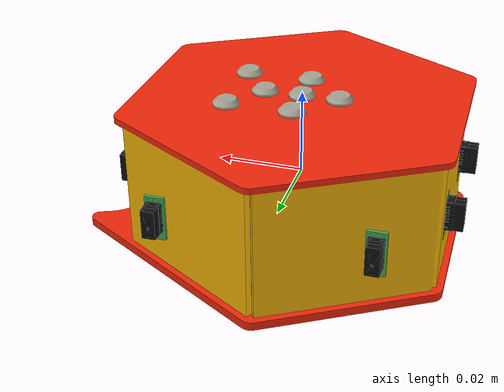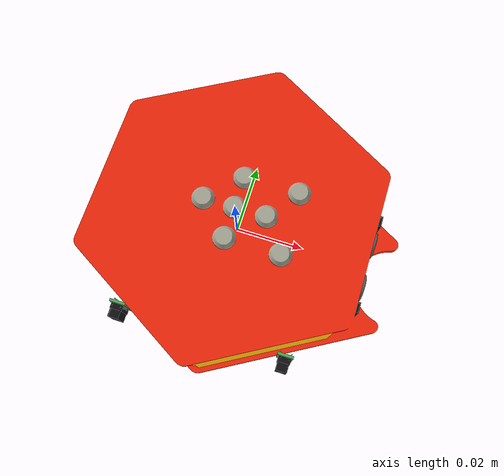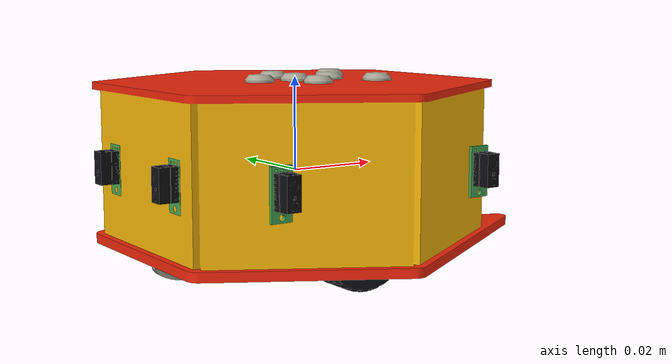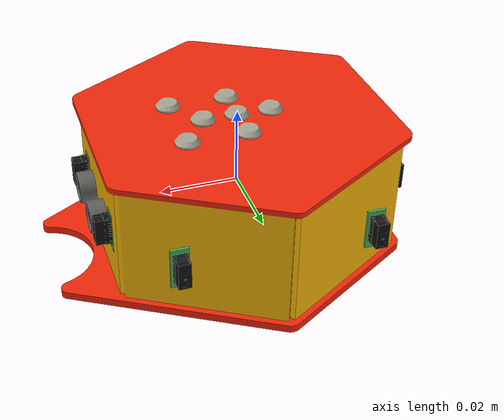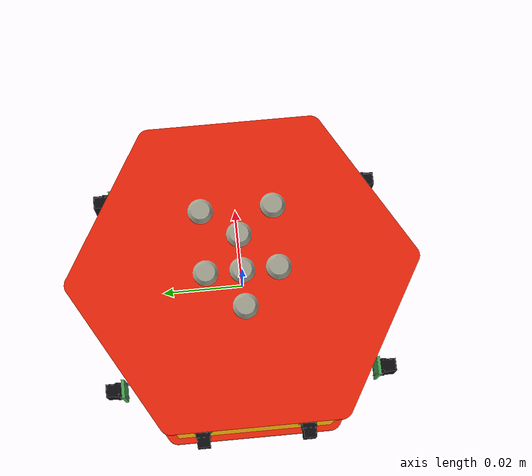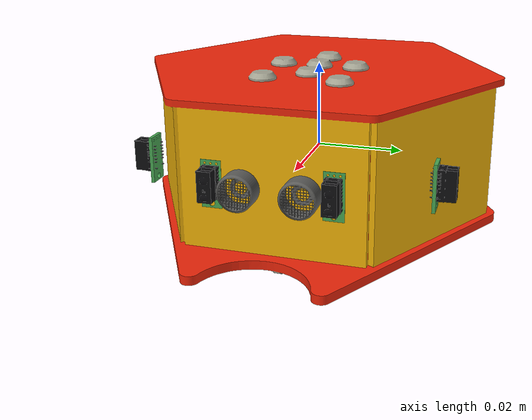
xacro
<?xml version="1.0"?>
<robot xmlns:xacro="http://www.ros.org/wiki/xacro" name="robocake">

  <xacro:include filename="$(find robocake_description)/urdf/common.xacro"/>

  <xacro:include filename="$(find robocake_description)/urdf/base.urdf.xacro"/>
  <xacro:include filename="$(find robocake_description)/urdf/wheel.urdf.xacro"/>
  <xacro:include
    filename="$(find robocake_description)/urdf/caster.urdf.xacro"/>
  <xacro:include
    filename="$(find robocake_description)/urdf/ultrasonic.urdf.xacro"/>
  <xacro:include
    filename="$(find robocake_description)/urdf/infrared.urdf.xacro"/>
  <xacro:include
    filename="$(find robocake_description)/urdf/infraredRoma.urdf.xacro"/>
  <xacro:include
    filename="$(find robocake_description)/urdf/reflectance.urdf.xacro"/>
  <xacro:include
    filename="$(find robocake_description)/urdf/infraredIlya.urdf.xacro"/>
  <xacro:include
    filename="$(find robocake_description)/urdf/infraredKolya.urdf.xacro"/>
  <xacro:include
    filename="$(find robocake_description)/urdf/infraredMaksim.urdf.xacro"/>

  <xacro:base name="orange"/>

  <xacro:wheel prefix="left" reflect="1"/>
  <xacro:wheel prefix="right" reflect="-1"/>

  <xacro:caster prefix="front" reflect="1"/>
  <xacro:caster prefix="back" reflect="-1"/>

  <xacro:ultrasonic/>

  <xacro:infraredRoma side="left_center" reflect="-0.25"/>
  <xacro:infraredRoma side="right_center" reflect="0.25"/>
<xacro:infraredIlya side="left_left" reflect="-1"/>
 <xacro:infraredIlya side="right_left" reflect="1"/>
<xacro:infraredKolya side="left_back" reflect="-0.25"/>
 <xacro:infraredKolya side="right_back" reflect="0.25"/>
<xacro:infraredMaksim side="left_right" reflect="-1"/>
 <xacro:infraredMaksim side="right_right" reflect="1"/>

 <xacro:reflectance side="center" reflect="0"/>

  <gazebo>
    <plugin name="gazebo_ros_control" filename="libgazebo_ros_control.so">
      <legacyModeNS>true</legacyModeNS>
    </plugin>
  </gazebo>

</robot>

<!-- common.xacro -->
<robot xmlns:xacro="http://www.ros.org/wiki/xacro">

  <xacro:macro name="mesh_visual" params="name">
    <visual>
      <geometry>
        <mesh
          filename="package://robocake_description/meshes/visual/${name}.dae"
          scale="0.5 0.5 0.5"/>
      </geometry>
    </visual>
  </xacro:macro>

  <xacro:macro name="mesh_collision" params="name">
    <collision>
      <geometry>
        <mesh
          filename="package://robocake_description/meshes/collision/${name}.dae"
          scale="0.5 0.5 0.5"/>
      </geometry>
    </collision>
  </xacro:macro>

  <xacro:macro name="mesh_inertia"
               params="mass scaling volume
                       x y z ixx ixy ixz iyy iyz izz">
    <inertial>
      <mass value="${mass}"/>
      <origin xyz="${x / scaling} ${y / scaling} ${z / scaling}"/>
      <xacro:property name="inertia_scaling"
                      value="${mass / volume / scaling**2}"/>
      <inertia
        ixx="${ixx * inertia_scaling}" ixy="${ixy * inertia_scaling}"
        ixz="${ixz * inertia_scaling}" iyy="${iyy * inertia_scaling}"
        iyz="${iyz * inertia_scaling}" izz="${izz * inertia_scaling}"
      />
    </inertial>
  </xacro:macro>

  <xacro:macro name="dummy_link" params="name">
    <link name="${name}">
      <inertial>
        <mass value="0.001"/>
        <inertia ixx="1e-12" ixy="0"     ixz="0"
                             iyy="1e-12" iyz="0"
                                         izz="1e-12"/>
      </inertial>
    </link>
  </xacro:macro>

  <xacro:macro name="gazebo_proximity_sensor"
               params="name angle min_range max_range type">
    <gazebo reference="${name}_link">
      <sensor type="ray" name="${name}_sensor">
        <update_rate>10</update_rate>
        <visualize>false</visualize>
        <ray>
          <scan>
            <horizontal>
              <samples>3</samples>
              <min_angle>${-angle / 2}</min_angle>
              <max_angle>${angle / 2}</max_angle>
            </horizontal>
            <vertical>
              <samples>3</samples>
              <min_angle>${-angle / 2}</min_angle>
              <max_angle>${angle / 2}</max_angle>
            </vertical>
          </scan>
          <range>
            <min>${min_range}</min>
            <max>${max_range}</max>
          </range>
        </ray>
        <plugin filename="libgazebo_ros_range.so" name="gazebo_ros_range">
          <topicName>${name}</topicName>
          <frameName>${name}_link</frameName>
          <fov>${angle}</fov>
          <radiation>${type}</radiation>
        </plugin>
      </sensor>
    </gazebo>
  </xacro:macro>
</robot>

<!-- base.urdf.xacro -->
<robot xmlns:xacro="http://www.ros.org/wiki/xacro" name="robocake">
  <xacro:macro name="base" params="name">
    <link name="base_link">
      <xacro:mesh_visual name="base_${name}"/>
      <xacro:mesh_collision name="base_${name}"/>
      <xacro:mesh_inertia mass="0.5" scaling="10" volume="0.213995"
                          x="0.006792" y="0.000060" z="0.016779"
                          ixx="0.057859" ixy="0.000003" ixz="0.000809"
                                         iyy="0.061351" iyz="0.000007"
                                                        izz="0.086716"/>
    </link>
  </xacro:macro>
</robot>

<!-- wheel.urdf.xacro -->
<robot xmlns:xacro="http://www.ros.org/wiki/xacro">
  <xacro:macro name="wheel" params="prefix reflect">
    <link name="${prefix}_wheel_link">
      <xacro:mesh_visual name="wheel"/>
      <collision>
        <origin xyz="0.000998 0.000001 -0.000002" rpy="0 ${pi / 2} 0"/>
        <geometry>
          <cylinder radius="0.0110655" length="0.008993"/>
        </geometry>
      </collision>
      <xacro:mesh_inertia mass="0.03" scaling="10" volume="0.015398"
                          x="0.010317" y="-0.000083" z="-0.000017"
                          ixx="0.000466" ixy="0"         ixz="0"
                                         iyy="0.000272"  iyz="0"
                                                         izz="0.000272"/>
    </link>

    <joint name="${prefix}_wheel_joint" type="continuous">
      <parent link="base_link"/>
      <origin xyz="0.0 ${reflect * 0.0212295} -0.010461"
              rpy="0 0 ${reflect * pi / 2}"/>
      <axis xyz="${reflect} 0 0"/>
      <child link="${prefix}_wheel_link"/>
    </joint>

    <transmission name="${prefix}_wheel_transmission">
      <type>transmission_interface/SimpleTransmission</type>
      <actuator name="${prefix}_wheel_actuator"/>
      <joint name="${prefix}_wheel_joint">
        <hardwareInterface>hardware_interface/VelocityJointInterface</hardwareInterface>
      </joint>
    </transmission>
  </xacro:macro>
</robot>

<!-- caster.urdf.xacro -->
<robot xmlns:xacro="http://www.ros.org/wiki/xacro">
  <xacro:macro name="caster" params="prefix reflect">
    <link name="${prefix}_caster_link">
      <xacro:mesh_visual name="caster"/>
      <collision>
        <geometry>
          <sphere radius="0.0029975"/>
        </geometry>
      </collision>
      <xacro:mesh_inertia mass="0.01" scaling="100" volume="0.899919"
                          x="0.000007" y="0.000028" z="-0.000015"
                          ixx="0.129151" ixy="-0.000001" ixz="0"
                                         iyy="0.129119"  iyz="0.000010"
                                                         izz="0.129104"/>
    </link>

    <!--
        Since the ball caster has three degrees of freedom while continuous
        joint only has one, it is implemented as three separate joints connected
        with dummy links.
    -->
    <xacro:dummy_link name="${prefix}_caster_x_to_y_link"/>

    <joint name="${prefix}_caster_x_joint" type="continuous">
      <parent link="base_link"/>
      <origin xyz="${reflect * 0.0245955} 0 -0.0184545"/>
      <axis xyz="1 0 0"/>
      <child link="${prefix}_caster_x_to_y_link"/>
    </joint>

    <xacro:dummy_link name="${prefix}_caster_y_to_z_link"/>

    <joint name="${prefix}_caster_y_joint" type="continuous">
      <parent link="${prefix}_caster_x_to_y_link"/>
      <axis xyz="0 1 0"/>
      <child link="${prefix}_caster_y_to_z_link"/>
    </joint>

    <joint name="${prefix}_caster_z_joint" type="continuous">
      <parent link="${prefix}_caster_y_to_z_link"/>
      <axis xyz="0 0 1"/>
      <child link="${prefix}_caster_link"/>
    </joint>
  </xacro:macro>
</robot>

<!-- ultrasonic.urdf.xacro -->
<robot xmlns:xacro="http://www.ros.org/wiki/xacro" name="robocake">
  <!--
      HC-SR04 ultrasonic sensor.
      See https://cdn.sparkfun.com/datasheets/Sensors/Proximity/HCSR04.pdf
  -->
  <xacro:macro name="ultrasonic">
    <link name="proximity_front_link">
      <xacro:mesh_visual name="ultrasonic"/>
      <xacro:mesh_collision name="ultrasonic"/>
      <xacro:mesh_inertia mass="0.02" scaling="10" volume="0.005512"
                          x="0.002263" y="-0.000840" z="0.013641"
                          ixx="0.000112" ixy="0"        ixz="0"
                                         iyy="0.000017" iyz="0"
                                                        izz="0.000111"/>
    </link>

    <joint name="proximity_front_joint" type="fixed">
      <parent link="base_link"/>
      <origin xyz="0.0362155 0.0000695 0.000582"/>
      <child link="proximity_front_link"/>
    </joint>

    <xacro:gazebo_proximity_sensor name="proximity_front"
                                   angle="${5 / 180 * pi}"
                                   min_range="0.02" max_range="0.8"
                                   type="ultrasound"/>
  </xacro:macro>
</robot>

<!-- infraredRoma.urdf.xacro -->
<robot xmlns:xacro="http://www.ros.org/wiki/xacro" name="robocake">
  <!--
      SHARP GP2Y0D805Z0F infrared sensor.
      See https://www.pololu.com/file/0J284/GP2Y0D805Z0F.pdf
  -->
  <xacro:macro name="infraredRoma" params="side reflect">
    <link name="proximity_${side}_link">
      <xacro:mesh_visual name="infrared"/>
      <collision>
        <origin xyz="0.0007755 -0.0000035 -0.0006835"/>
        <geometry>
          <box size="0.003951 0.00315 0.006821"/>
        </geometry>
      </collision>
      <xacro:mesh_inertia mass="0.01" scaling="100" volume="0.943720"
                        x="0.006637" y="-0.000480" z="-0.183167"
                        ixx="0.236973" ixy="-0.000042" ixz="-0.005641"
                                       iyy="0.270439"  iyz="-0.000115"
                                                       izz="0.120043"/>
    </link>

    <joint name="proximity_${side}_joint" type="fixed">
      <parent link="base_link"/>
      <origin xyz="0.037 ${reflect * -0.052} 0.0027485"
              rpy="0 0 0"/>
      <child link="proximity_${side}_link"/>
    </joint>

    <!--
        min_range is set due to the sensor's model being partially obscured by
        the chassis. With min_range set to zero, the chassis would be within the
        sensor's range.
    -->
    <xacro:gazebo_proximity_sensor name="proximity_${side}"
                                   angle="${2 / 180 * pi}"
                                   min_range="0.005941" max_range="4"
                                   type="infrared"/>
  </xacro:macro>
</robot>

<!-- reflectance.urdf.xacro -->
<robot xmlns:xacro="http://www.ros.org/wiki/xacro" name="robocake">
  <!--
      QTR-1A reflectance sensor.
      See https://www.pololu.com/product/2458
  -->
  <xacro:macro name="reflectance" params="side reflect">
    <link name="reflectance_${side}_link">
      <xacro:mesh_visual name="reflectance"/>
      <collision>
        <geometry>
          <box size="0.002 0.008 0.0145"/>
        </geometry>
      </collision>
      <xacro:mesh_inertia mass="0.01" scaling="100" volume="0.201368"
                        x="-0.024542" y="0" z="0"
                        ixx="0.012506" ixy="0"        ixz="0"
                                       iyy="0.034493" iyz="0"
                                                      izz="0.045657"/>
    </link>

    <joint name="reflectance_${side}_joint" type="fixed">
      <parent link="base_link"/>
      <origin xyz="0
                   ${reflect * 0}
                   -0.0165"
              rpy="0 ${pi / 2} 0"/>
      <child link="reflectance_${side}_link"/>
    </joint>

    <gazebo reference="reflectance_${side}_link">
      <sensor type="camera" name="${side}_camera">
        <update_rate>20</update_rate> <!-- 10 times per second -->
        <visualize>true</visualize> <!-- false -->
        <camera name="${side}_camera">
          <clip>
            <near>0.001</near>
          </clip>
          <image>
            <width>4</width>
            <height>4</height>
            <format>R8G8B8</format>
          </image>
        </camera>
        <plugin name="reflectance_sensor"
                filename="libreflectance_sensor_plugin.so">
          <topicName>reflectance_${side}</topicName>
        </plugin>
      </sensor>
    </gazebo>

  </xacro:macro>
</robot>

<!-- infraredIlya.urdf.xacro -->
<robot xmlns:xacro="http://www.ros.org/wiki/xacro" name="robocake">
  <!--
      SHARP GP2Y0D805Z0F infrared sensor.
      See https://www.pololu.com/file/0J284/GP2Y0D805Z0F.pdf
  -->
  <xacro:macro name="infraredIlya" params="side reflect">
    <link name="proximity_${side}_link">
      <xacro:mesh_visual name="infrared"/>
      <collision>
        <origin xyz="0.0007755 -0.0000035 -0.0006835"/>
        <geometry>
          <box size="0.003951 0.00315 0.006821"/>
        </geometry>
      </collision>
      <xacro:mesh_inertia mass="0.01" scaling="100" volume="0.943720"
                        x="0.006637" y="-0.000480" z="-0.183167"
                        ixx="0.236973" ixy="-0.000042" ixz="-0.005641"
                                       iyy="0.270439"  iyz="-0.000115"
                                                       izz="0.120043"/>
    </link>

    <joint name="proximity_${side}_joint" type="fixed">
      <parent link="base_link"/>
      <origin xyz="${0.024*reflect} 0.033 0.0027485"
              rpy="0 0 ${pi/2}"/>
      <child link="proximity_${side}_link"/>
    </joint>

    <!--
        min_range is set due to the sensor's model being partially obscured by
        the chassis. With min_range set to zero, the chassis would be within the
        sensor's range.
    -->
    <xacro:gazebo_proximity_sensor name="proximity_${side}"
                                   angle="${2 / 180 * pi}"
                                   min_range="0.005941" max_range="4"
                                   type="infrared"/>
  </xacro:macro>
</robot>

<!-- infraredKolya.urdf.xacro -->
<robot xmlns:xacro="http://www.ros.org/wiki/xacro" name="robocake">
  <!--
      SHARP GP2Y0D805Z0F infrared sensor.
      See https://www.pololu.com/file/0J284/GP2Y0D805Z0F.pdf
  -->
  <xacro:macro name="infraredKolya" params="side reflect">
    <link name="proximity_${side}_link">
      <xacro:mesh_visual name="infrared"/>
      <collision>
        <origin xyz="0.0007755 -0.0000035 -0.0006835"/>
        <geometry>
          <box size="0.003951 0.00315 0.006821"/>
        </geometry>
      </collision>
      <xacro:mesh_inertia mass="0.01" scaling="100" volume="0.943720"
                        x="0.006637" y="-0.000480" z="-0.183167"
                        ixx="0.236973" ixy="-0.000042" ixz="-0.005641"
                                       iyy="0.270439"  iyz="-0.000115"
                                                       izz="0.120043"/>
    </link>

    <joint name="proximity_${side}_joint" type="fixed">
      <parent link="base_link"/>
      <origin xyz="-0.037 ${reflect * -0.052} 0.0027485"
              rpy="0 0 ${-pi}"/>
      <child link="proximity_${side}_link"/>
    </joint>

    <!--
        min_range is set due to the sensor's model being partially obscured by
        the chassis. With min_range set to zero, the chassis would be within the
        sensor's range.
    -->
    <xacro:gazebo_proximity_sensor name="proximity_${side}"
                                   angle="${2 / 180 * pi}"
                                   min_range="0.005941" max_range="4"
                                   type="infrared"/>
  </xacro:macro>
</robot>

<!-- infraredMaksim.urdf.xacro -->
<robot xmlns:xacro="http://www.ros.org/wiki/xacro" name="robocake">
  <!--
      SHARP GP2Y0D805Z0F infrared sensor.
      See https://www.pololu.com/file/0J284/GP2Y0D805Z0F.pdf
  -->
  <xacro:macro name="infraredMaksim" params="side reflect">
    <link name="proximity_${side}_link">
      <xacro:mesh_visual name="infrared"/>
      <collision>
        <origin xyz="0.0007755 -0.0000035 -0.0006835"/>
        <geometry>
          <box size="0.003951 0.00315 0.006821"/>
        </geometry>
      </collision>
      <xacro:mesh_inertia mass="0.01" scaling="100" volume="0.943720"
                        x="0.006637" y="-0.000480" z="-0.183167"
                        ixx="0.236973" ixy="-0.000042" ixz="-0.005641"
                                       iyy="0.270439"  iyz="-0.000115"
                                                       izz="0.120043"/>
   </link>

    <joint name="proximity_${side}_joint" type="fixed">
      <parent link="base_link"/>
      <origin xyz="${0.024*reflect} -0.033 0.0027485"
              rpy="0 0 ${-pi/2}"/>
      <child link="proximity_${side}_link"/>
    </joint>

    <!--
        min_range is set due to the sensor's model being partially obscured by
        the chassis. With min_range set to zero, the chassis would be within the
        sensor's range.
    -->
    <xacro:gazebo_proximity_sensor name="proximity_${side}"
                                   angle="${2 / 180 * pi}"
                                   min_range="0.005941" max_range="4"
                                   type="infrared"/>
  </xacro:macro>
</robot>
